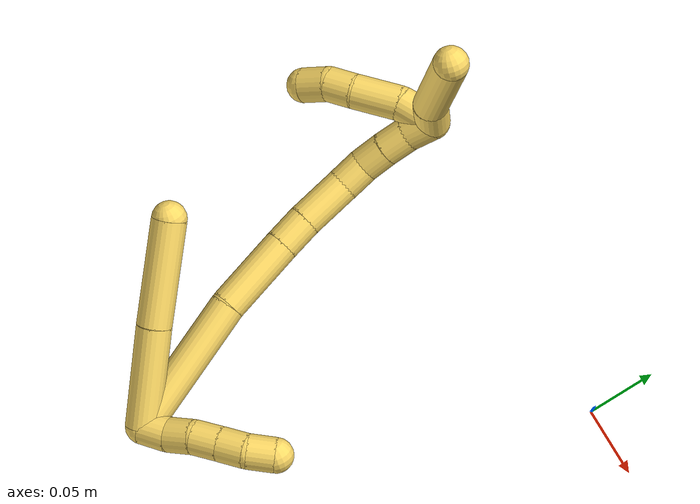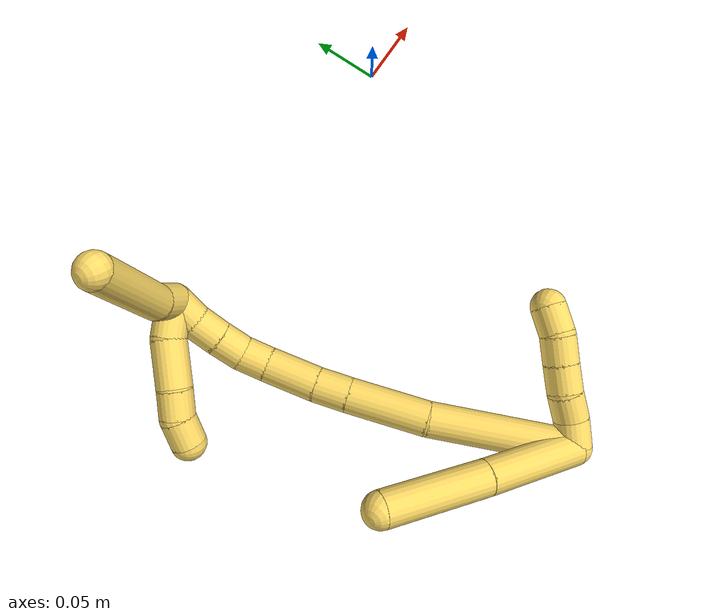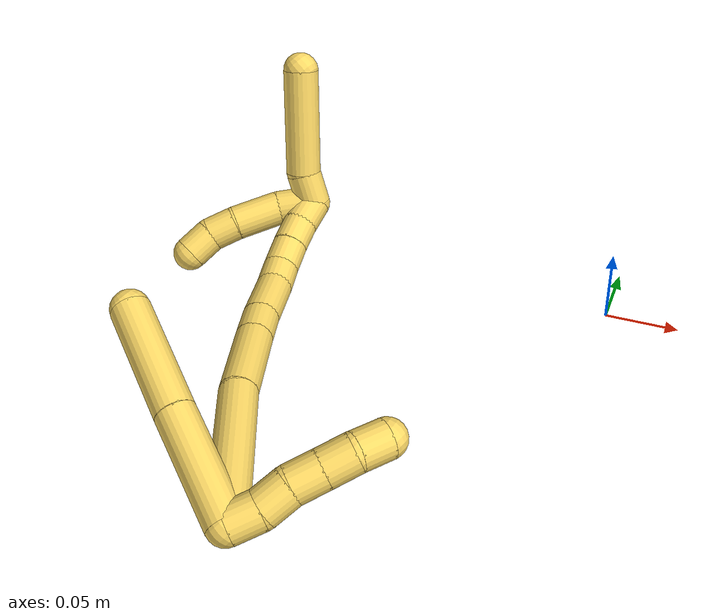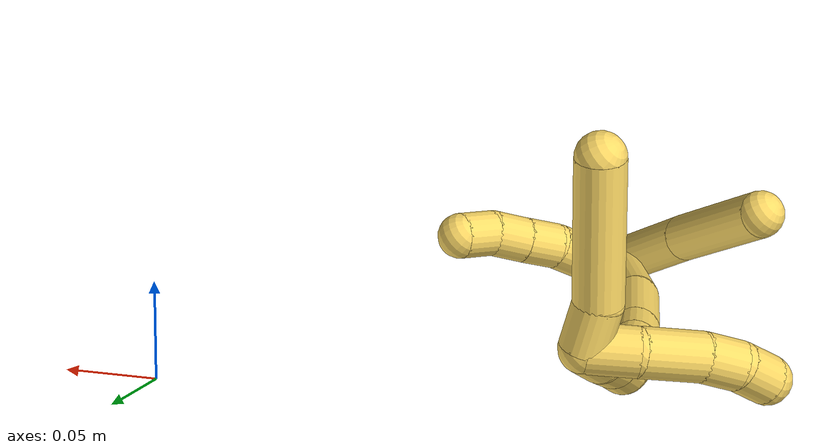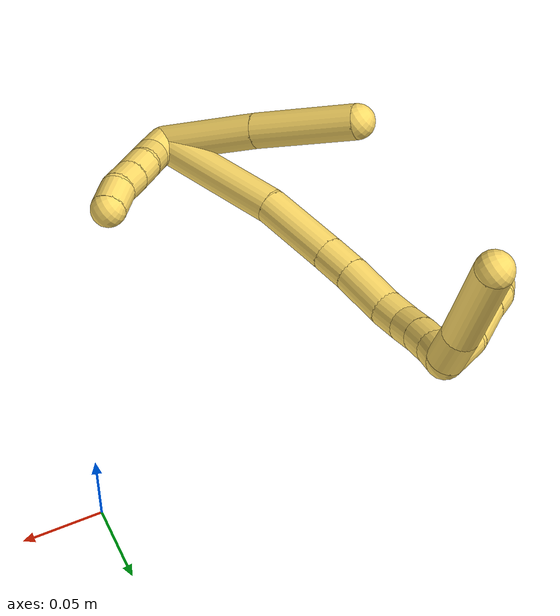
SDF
<sdf version="1.7">
 <world name="default">
  <model name="5">
   <static>0</static>
   <link name="5">
    <collision name="collision-cylinder-e_1_2_8">
     <pose>0.002028 0.017294 0.032396 -0.490342 0.055177 -0.013809</pose>
     <geometry><cylinder><radius>0.0125</radius><length>0.073557</length></cylinder></geometry>
     <surface>
      <friction><ode><mu>1.16</mu><mu2>1.16</mu2><slip1>0</slip1><slip2>0</slip2></ode></friction>
      <contact><ode><kp>1e+06</kp><kd>1</kd><max_vel>0</max_vel><min_depth>0.001</min_depth></ode></contact>
     </surface>
    </collision>
    <visual name="visual-cylinder-e_1_2_8">
     <pose>0.002028 0.017294 0.032396 -0.490342 0.055177 -0.013809</pose>
     <geometry><cylinder><radius>0.0125</radius><length>0.073557</length></cylinder></geometry>
     <material><ambient>1 0.858824 0.4 1</ambient></material>
    </visual>
    <collision name="collision-cylinder-e_2_8_6">
     <pose>0.006022 0.053956 0.097683 -0.532186 0.051447 -0.014025</pose>
     <geometry><cylinder><radius>0.0125</radius><length>0.076443</length></cylinder></geometry>
     <surface>
      <friction><ode><mu>1.16</mu><mu2>1.16</mu2><slip1>0</slip1><slip2>0</slip2></ode></friction>
      <contact><ode><kp>1e+06</kp><kd>1</kd><max_vel>0</max_vel><min_depth>0.001</min_depth></ode></contact>
     </surface>
    </collision>
    <visual name="visual-cylinder-e_2_8_6">
     <pose>0.006022 0.053956 0.097683 -0.532186 0.051447 -0.014025</pose>
     <geometry><cylinder><radius>0.0125</radius><length>0.076443</length></cylinder></geometry>
     <material><ambient>1 0.858824 0.4 1</ambient></material>
    </visual>
    <collision name="collision-cylinder-e_1_2_9">
     <pose>0.008879 0.00332 -0.003185 -2.33541 1.09276 -1.91849</pose>
     <geometry><cylinder><radius>0.0125</radius><length>0.02</length></cylinder></geometry>
     <surface>
      <friction><ode><mu>1.16</mu><mu2>1.16</mu2><slip1>0</slip1><slip2>0</slip2></ode></friction>
      <contact><ode><kp>1e+06</kp><kd>1</kd><max_vel>0</max_vel><min_depth>0.001</min_depth></ode></contact>
     </surface>
    </collision>
    <visual name="visual-cylinder-e_1_2_9">
     <pose>0.008879 0.00332 -0.003185 -2.33541 1.09276 -1.91849</pose>
     <geometry><cylinder><radius>0.0125</radius><length>0.02</length></cylinder></geometry>
     <material><ambient>1 0.858824 0.4 1</ambient></material>
    </visual>
    <collision name="collision-cylinder-e_2_9_10">
     <pose>0.027123 0.010103 -0.006919 -1.72813 1.21253 -1.36409</pose>
     <geometry><cylinder><radius>0.0125</radius><length>0.02</length></cylinder></geometry>
     <surface>
      <friction><ode><mu>1.16</mu><mu2>1.16</mu2><slip1>0</slip1><slip2>0</slip2></ode></friction>
      <contact><ode><kp>1e+06</kp><kd>1</kd><max_vel>0</max_vel><min_depth>0.001</min_depth></ode></contact>
     </surface>
    </collision>
    <visual name="visual-cylinder-e_2_9_10">
     <pose>0.027123 0.010103 -0.006919 -1.72813 1.21253 -1.36409</pose>
     <geometry><cylinder><radius>0.0125</radius><length>0.02</length></cylinder></geometry>
     <material><ambient>1 0.858824 0.4 1</ambient></material>
    </visual>
    <collision name="collision-cylinder-e_3_10_11">
     <pose>0.045415 0.01714 -0.010214 -2.22594 1.10323 -1.79116</pose>
     <geometry><cylinder><radius>0.0125</radius><length>0.02</length></cylinder></geometry>
     <surface>
      <friction><ode><mu>1.16</mu><mu2>1.16</mu2><slip1>0</slip1><slip2>0</slip2></ode></friction>
      <contact><ode><kp>1e+06</kp><kd>1</kd><max_vel>0</max_vel><min_depth>0.001</min_depth></ode></contact>
     </surface>
    </collision>
    <visual name="visual-cylinder-e_3_10_11">
     <pose>0.045415 0.01714 -0.010214 -2.22594 1.10323 -1.79116</pose>
     <geometry><cylinder><radius>0.0125</radius><length>0.02</length></cylinder></geometry>
     <material><ambient>1 0.858824 0.4 1</ambient></material>
    </visual>
    <collision name="collision-cylinder-e_4_11_12">
     <pose>0.063393 0.024053 -0.015592 -2.23839 1.13166 -1.83716</pose>
     <geometry><cylinder><radius>0.0125</radius><length>0.02</length></cylinder></geometry>
     <surface>
      <friction><ode><mu>1.16</mu><mu2>1.16</mu2><slip1>0</slip1><slip2>0</slip2></ode></friction>
      <contact><ode><kp>1e+06</kp><kd>1</kd><max_vel>0</max_vel><min_depth>0.001</min_depth></ode></contact>
     </surface>
    </collision>
    <visual name="visual-cylinder-e_4_11_12">
     <pose>0.063393 0.024053 -0.015592 -2.23839 1.13166 -1.83716</pose>
     <geometry><cylinder><radius>0.0125</radius><length>0.02</length></cylinder></geometry>
     <material><ambient>1 0.858824 0.4 1</ambient></material>
    </visual>
    <collision name="collision-cylinder-e_5_12_5">
     <pose>0.079958 0.033048 -0.021623 -2.11179 0.850164 -1.34956</pose>
     <geometry><cylinder><radius>0.0125</radius><length>0.02</length></cylinder></geometry>
     <surface>
      <friction><ode><mu>1.16</mu><mu2>1.16</mu2><slip1>0</slip1><slip2>0</slip2></ode></friction>
      <contact><ode><kp>1e+06</kp><kd>1</kd><max_vel>0</max_vel><min_depth>0.001</min_depth></ode></contact>
     </surface>
    </collision>
    <visual name="visual-cylinder-e_5_12_5">
     <pose>0.079958 0.033048 -0.021623 -2.11179 0.850164 -1.34956</pose>
     <geometry><cylinder><radius>0.0125</radius><length>0.02</length></cylinder></geometry>
     <material><ambient>1 0.858824 0.4 1</ambient></material>
    </visual>
    <collision name="collision-cylinder-e_1_2_13">
     <pose>0.009215 0.043843 0.024847 -1.05519 0.180852 -0.105571</pose>
     <geometry><cylinder><radius>0.0125</radius><length>0.10246</length></cylinder></geometry>
     <surface>
      <friction><ode><mu>1.16</mu><mu2>1.16</mu2><slip1>0</slip1><slip2>0</slip2></ode></friction>
      <contact><ode><kp>1e+06</kp><kd>1</kd><max_vel>0</max_vel><min_depth>0.001</min_depth></ode></contact>
     </surface>
    </collision>
    <visual name="visual-cylinder-e_1_2_13">
     <pose>0.009215 0.043843 0.024847 -1.05519 0.180852 -0.105571</pose>
     <geometry><cylinder><radius>0.0125</radius><length>0.10246</length></cylinder></geometry>
     <material><ambient>1 0.858824 0.4 1</ambient></material>
    </visual>
    <collision name="collision-cylinder-e_2_13_14">
     <pose>0.024045 0.1136 0.059779 -1.19969 0.199277 -0.136528</pose>
     <geometry><cylinder><radius>0.0125</radius><length>0.056738</length></cylinder></geometry>
     <surface>
      <friction><ode><mu>1.16</mu><mu2>1.16</mu2><slip1>0</slip1><slip2>0</slip2></ode></friction>
      <contact><ode><kp>1e+06</kp><kd>1</kd><max_vel>0</max_vel><min_depth>0.001</min_depth></ode></contact>
     </surface>
    </collision>
    <visual name="visual-cylinder-e_2_13_14">
     <pose>0.024045 0.1136 0.059779 -1.19969 0.199277 -0.136528</pose>
     <geometry><cylinder><radius>0.0125</radius><length>0.056738</length></cylinder></geometry>
     <material><ambient>1 0.858824 0.4 1</ambient></material>
    </visual>
    <collision name="collision-cylinder-e_3_14_15">
     <pose>0.032323 0.150297 0.073968 -1.20707 0.226766 -0.156672</pose>
     <geometry><cylinder><radius>0.0125</radius><length>0.02368</length></cylinder></geometry>
     <surface>
      <friction><ode><mu>1.16</mu><mu2>1.16</mu2><slip1>0</slip1><slip2>0</slip2></ode></friction>
      <contact><ode><kp>1e+06</kp><kd>1</kd><max_vel>0</max_vel><min_depth>0.001</min_depth></ode></contact>
     </surface>
    </collision>
    <visual name="visual-cylinder-e_3_14_15">
     <pose>0.032323 0.150297 0.073968 -1.20707 0.226766 -0.156672</pose>
     <geometry><cylinder><radius>0.0125</radius><length>0.02368</length></cylinder></geometry>
     <material><ambient>1 0.858824 0.4 1</ambient></material>
    </visual>
    <collision name="collision-cylinder-e_4_15_16">
     <pose>0.040118 0.177982 0.083666 -1.2512 0.280701 -0.203416</pose>
     <geometry><cylinder><radius>0.0125</radius><length>0.03706</length></cylinder></geometry>
     <surface>
      <friction><ode><mu>1.16</mu><mu2>1.16</mu2><slip1>0</slip1><slip2>0</slip2></ode></friction>
      <contact><ode><kp>1e+06</kp><kd>1</kd><max_vel>0</max_vel><min_depth>0.001</min_depth></ode></contact>
     </surface>
    </collision>
    <visual name="visual-cylinder-e_4_15_16">
     <pose>0.040118 0.177982 0.083666 -1.2512 0.280701 -0.203416</pose>
     <geometry><cylinder><radius>0.0125</radius><length>0.03706</length></cylinder></geometry>
     <material><ambient>1 0.858824 0.4 1</ambient></material>
    </visual>
    <collision name="collision-cylinder-e_5_16_17">
     <pose>0.04927 0.203129 0.093251 -1.1199 0.413443 -0.261434</pose>
     <geometry><cylinder><radius>0.0125</radius><length>0.020004</length></cylinder></geometry>
     <surface>
      <friction><ode><mu>1.16</mu><mu2>1.16</mu2><slip1>0</slip1><slip2>0</slip2></ode></friction>
      <contact><ode><kp>1e+06</kp><kd>1</kd><max_vel>0</max_vel><min_depth>0.001</min_depth></ode></contact>
     </surface>
    </collision>
    <visual name="visual-cylinder-e_5_16_17">
     <pose>0.04927 0.203129 0.093251 -1.1199 0.413443 -0.261434</pose>
     <geometry><cylinder><radius>0.0125</radius><length>0.020004</length></cylinder></geometry>
     <material><ambient>1 0.858824 0.4 1</ambient></material>
    </visual>
    <collision name="collision-cylinder-e_6_17_18">
     <pose>0.059582 0.217881 0.101519 -0.989425 0.679705 -0.376945</pose>
     <geometry><cylinder><radius>0.0125</radius><length>0.020024</length></cylinder></geometry>
     <surface>
      <friction><ode><mu>1.16</mu><mu2>1.16</mu2><slip1>0</slip1><slip2>0</slip2></ode></friction>
      <contact><ode><kp>1e+06</kp><kd>1</kd><max_vel>0</max_vel><min_depth>0.001</min_depth></ode></contact>
     </surface>
    </collision>
    <visual name="visual-cylinder-e_6_17_18">
     <pose>0.059582 0.217881 0.101519 -0.989425 0.679705 -0.376945</pose>
     <geometry><cylinder><radius>0.0125</radius><length>0.020024</length></cylinder></geometry>
     <material><ambient>1 0.858824 0.4 1</ambient></material>
    </visual>
    <collision name="collision-cylinder-e_7_18_19">
     <pose>0.072307 0.231091 0.109524 -1.06313 0.697795 -0.421466</pose>
     <geometry><cylinder><radius>0.0125</radius><length>0.020019</length></cylinder></geometry>
     <surface>
      <friction><ode><mu>1.16</mu><mu2>1.16</mu2><slip1>0</slip1><slip2>0</slip2></ode></friction>
      <contact><ode><kp>1e+06</kp><kd>1</kd><max_vel>0</max_vel><min_depth>0.001</min_depth></ode></contact>
     </surface>
    </collision>
    <visual name="visual-cylinder-e_7_18_19">
     <pose>0.072307 0.231091 0.109524 -1.06313 0.697795 -0.421466</pose>
     <geometry><cylinder><radius>0.0125</radius><length>0.020019</length></cylinder></geometry>
     <material><ambient>1 0.858824 0.4 1</ambient></material>
    </visual>
    <collision name="collision-cylinder-e_8_19_1">
     <pose>0.086467 0.243367 0.11631 -1.06914 0.882565 -0.545395</pose>
     <geometry><cylinder><radius>0.0125</radius><length>0.020015</length></cylinder></geometry>
     <surface>
      <friction><ode><mu>1.16</mu><mu2>1.16</mu2><slip1>0</slip1><slip2>0</slip2></ode></friction>
      <contact><ode><kp>1e+06</kp><kd>1</kd><max_vel>0</max_vel><min_depth>0.001</min_depth></ode></contact>
     </surface>
    </collision>
    <visual name="visual-cylinder-e_8_19_1">
     <pose>0.086467 0.243367 0.11631 -1.06914 0.882565 -0.545395</pose>
     <geometry><cylinder><radius>0.0125</radius><length>0.020015</length></cylinder></geometry>
     <material><ambient>1 0.858824 0.4 1</ambient></material>
    </visual>
    <collision name="collision-cylinder-e_1_1_20">
     <pose>0.099866 0.245784 0.129707 0.296297 0.482932 0.073475</pose>
     <geometry><cylinder><radius>0.0125</radius><length>0.024416</length></cylinder></geometry>
     <surface>
      <friction><ode><mu>1.16</mu><mu2>1.16</mu2><slip1>0</slip1><slip2>0</slip2></ode></friction>
      <contact><ode><kp>1e+06</kp><kd>1</kd><max_vel>0</max_vel><min_depth>0.001</min_depth></ode></contact>
     </surface>
    </collision>
    <visual name="visual-cylinder-e_1_1_20">
     <pose>0.099866 0.245784 0.129707 0.296297 0.482932 0.073475</pose>
     <geometry><cylinder><radius>0.0125</radius><length>0.024416</length></cylinder></geometry>
     <material><ambient>1 0.858824 0.4 1</ambient></material>
    </visual>
    <collision name="collision-cylinder-e_2_20_4">
     <pose>0.131383 0.235347 0.166639 0.26722 0.753157 0.106206</pose>
     <geometry><cylinder><radius>0.0125</radius><length>0.075584</length></cylinder></geometry>
     <surface>
      <friction><ode><mu>1.16</mu><mu2>1.16</mu2><slip1>0</slip1><slip2>0</slip2></ode></friction>
      <contact><ode><kp>1e+06</kp><kd>1</kd><max_vel>0</max_vel><min_depth>0.001</min_depth></ode></contact>
     </surface>
    </collision>
    <visual name="visual-cylinder-e_2_20_4">
     <pose>0.131383 0.235347 0.166639 0.26722 0.753157 0.106206</pose>
     <geometry><cylinder><radius>0.0125</radius><length>0.075584</length></cylinder></geometry>
     <material><ambient>1 0.858824 0.4 1</ambient></material>
    </visual>
    <collision name="collision-cylinder-e_1_1_21">
     <pose>0.083661 0.246278 0.126352 0.364157 -0.953643 -0.189652</pose>
     <geometry><cylinder><radius>0.0125</radius><length>0.025838</length></cylinder></geometry>
     <surface>
      <friction><ode><mu>1.16</mu><mu2>1.16</mu2><slip1>0</slip1><slip2>0</slip2></ode></friction>
      <contact><ode><kp>1e+06</kp><kd>1</kd><max_vel>0</max_vel><min_depth>0.001</min_depth></ode></contact>
     </surface>
    </collision>
    <visual name="visual-cylinder-e_1_1_21">
     <pose>0.083661 0.246278 0.126352 0.364157 -0.953643 -0.189652</pose>
     <geometry><cylinder><radius>0.0125</radius><length>0.025838</length></cylinder></geometry>
     <material><ambient>1 0.858824 0.4 1</ambient></material>
    </visual>
    <collision name="collision-cylinder-e_2_21_22">
     <pose>0.058641 0.236961 0.139322 0.838398 -1.01739 -0.48712</pose>
     <geometry><cylinder><radius>0.0125</radius><length>0.034051</length></cylinder></geometry>
     <surface>
      <friction><ode><mu>1.16</mu><mu2>1.16</mu2><slip1>0</slip1><slip2>0</slip2></ode></friction>
      <contact><ode><kp>1e+06</kp><kd>1</kd><max_vel>0</max_vel><min_depth>0.001</min_depth></ode></contact>
     </surface>
    </collision>
    <visual name="visual-cylinder-e_2_21_22">
     <pose>0.058641 0.236961 0.139322 0.838398 -1.01739 -0.48712</pose>
     <geometry><cylinder><radius>0.0125</radius><length>0.034051</length></cylinder></geometry>
     <material><ambient>1 0.858824 0.4 1</ambient></material>
    </visual>
    <collision name="collision-cylinder-e_3_22_23">
     <pose>0.034952 0.227528 0.148095 0.783482 -1.16662 -0.532271</pose>
     <geometry><cylinder><radius>0.0125</radius><length>0.020022</length></cylinder></geometry>
     <surface>
      <friction><ode><mu>1.16</mu><mu2>1.16</mu2><slip1>0</slip1><slip2>0</slip2></ode></friction>
      <contact><ode><kp>1e+06</kp><kd>1</kd><max_vel>0</max_vel><min_depth>0.001</min_depth></ode></contact>
     </surface>
    </collision>
    <visual name="visual-cylinder-e_3_22_23">
     <pose>0.034952 0.227528 0.148095 0.783482 -1.16662 -0.532271</pose>
     <geometry><cylinder><radius>0.0125</radius><length>0.020022</length></cylinder></geometry>
     <material><ambient>1 0.858824 0.4 1</ambient></material>
    </visual>
    <collision name="collision-cylinder-e_4_23_3">
     <pose>0.016373 0.221162 0.150526 1.67022 -1.20364 -1.29814</pose>
     <geometry><cylinder><radius>0.0125</radius><length>0.020089</length></cylinder></geometry>
     <surface>
      <friction><ode><mu>1.16</mu><mu2>1.16</mu2><slip1>0</slip1><slip2>0</slip2></ode></friction>
      <contact><ode><kp>1e+06</kp><kd>1</kd><max_vel>0</max_vel><min_depth>0.001</min_depth></ode></contact>
     </surface>
    </collision>
    <visual name="visual-cylinder-e_4_23_3">
     <pose>0.016373 0.221162 0.150526 1.67022 -1.20364 -1.29814</pose>
     <geometry><cylinder><radius>0.0125</radius><length>0.020089</length></cylinder></geometry>
     <material><ambient>1 0.858824 0.4 1</ambient></material>
    </visual>
    <collision name="collision-sphere-3">
     <pose>0.006998 0.217574 0.150168 0 -0 0</pose>
     <geometry><sphere><radius>0.0125</radius></sphere></geometry>
     <surface>
      <friction><ode><mu>1.16</mu><mu2>1.16</mu2><slip1>0</slip1><slip2>0</slip2></ode></friction>
      <contact><ode><kp>1e+06</kp><kd>1</kd><max_vel>0</max_vel><min_depth>0.001</min_depth></ode></contact>
     </surface>
    </collision>
    <visual name="visual-sphere-3">
     <pose>0.006998 0.217574 0.150168 0 -0 0</pose>
     <geometry><sphere><radius>0.0125</radius></sphere></geometry>
     <material><ambient>1 0.858824 0.4 1</ambient></material>
    </visual>
    <collision name="collision-sphere-23">
     <pose>0.025748 0.22475 0.150884 0 -0 0</pose>
     <geometry><sphere><radius>0.0125</radius></sphere></geometry>
     <surface>
      <friction><ode><mu>1.16</mu><mu2>1.16</mu2><slip1>0</slip1><slip2>0</slip2></ode></friction>
      <contact><ode><kp>1e+06</kp><kd>1</kd><max_vel>0</max_vel><min_depth>0.001</min_depth></ode></contact>
     </surface>
    </collision>
    <visual name="visual-sphere-23">
     <pose>0.025748 0.22475 0.150884 0 -0 0</pose>
     <geometry><sphere><radius>0.0125</radius></sphere></geometry>
     <material><ambient>1 0.858824 0.4 1</ambient></material>
    </visual>
    <collision name="collision-sphere-22">
     <pose>0.044156 0.230307 0.145306 0 -0 0</pose>
     <geometry><sphere><radius>0.0125</radius></sphere></geometry>
     <surface>
      <friction><ode><mu>1.16</mu><mu2>1.16</mu2><slip1>0</slip1><slip2>0</slip2></ode></friction>
      <contact><ode><kp>1e+06</kp><kd>1</kd><max_vel>0</max_vel><min_depth>0.001</min_depth></ode></contact>
     </surface>
    </collision>
    <visual name="visual-sphere-22">
     <pose>0.044156 0.230307 0.145306 0 -0 0</pose>
     <geometry><sphere><radius>0.0125</radius></sphere></geometry>
     <material><ambient>1 0.858824 0.4 1</ambient></material>
    </visual>
    <collision name="collision-sphere-21">
     <pose>0.073125 0.243615 0.133339 0 -0 0</pose>
     <geometry><sphere><radius>0.0125</radius></sphere></geometry>
     <surface>
      <friction><ode><mu>1.16</mu><mu2>1.16</mu2><slip1>0</slip1><slip2>0</slip2></ode></friction>
      <contact><ode><kp>1e+06</kp><kd>1</kd><max_vel>0</max_vel><min_depth>0.001</min_depth></ode></contact>
     </surface>
    </collision>
    <visual name="visual-sphere-21">
     <pose>0.073125 0.243615 0.133339 0 -0 0</pose>
     <geometry><sphere><radius>0.0125</radius></sphere></geometry>
     <material><ambient>1 0.858824 0.4 1</ambient></material>
    </visual>
    <collision name="collision-sphere-4">
     <pose>0.157231 0.228067 0.193232 0 -0 0</pose>
     <geometry><sphere><radius>0.0125</radius></sphere></geometry>
     <surface>
      <friction><ode><mu>1.16</mu><mu2>1.16</mu2><slip1>0</slip1><slip2>0</slip2></ode></friction>
      <contact><ode><kp>1e+06</kp><kd>1</kd><max_vel>0</max_vel><min_depth>0.001</min_depth></ode></contact>
     </surface>
    </collision>
    <visual name="visual-sphere-4">
     <pose>0.157231 0.228067 0.193232 0 -0 0</pose>
     <geometry><sphere><radius>0.0125</radius></sphere></geometry>
     <material><ambient>1 0.858824 0.4 1</ambient></material>
    </visual>
    <collision name="collision-sphere-20">
     <pose>0.105535 0.242627 0.140047 0 -0 0</pose>
     <geometry><sphere><radius>0.0125</radius></sphere></geometry>
     <surface>
      <friction><ode><mu>1.16</mu><mu2>1.16</mu2><slip1>0</slip1><slip2>0</slip2></ode></friction>
      <contact><ode><kp>1e+06</kp><kd>1</kd><max_vel>0</max_vel><min_depth>0.001</min_depth></ode></contact>
     </surface>
    </collision>
    <visual name="visual-sphere-20">
     <pose>0.105535 0.242627 0.140047 0 -0 0</pose>
     <geometry><sphere><radius>0.0125</radius></sphere></geometry>
     <material><ambient>1 0.858824 0.4 1</ambient></material>
    </visual>
    <collision name="collision-sphere-11">
     <pose>0.054341 0.020714 -0.01296 0 -0 0</pose>
     <geometry><sphere><radius>0.0125</radius></sphere></geometry>
     <surface>
      <friction><ode><mu>1.16</mu><mu2>1.16</mu2><slip1>0</slip1><slip2>0</slip2></ode></friction>
      <contact><ode><kp>1e+06</kp><kd>1</kd><max_vel>0</max_vel><min_depth>0.001</min_depth></ode></contact>
     </surface>
    </collision>
    <visual name="visual-sphere-11">
     <pose>0.054341 0.020714 -0.01296 0 -0 0</pose>
     <geometry><sphere><radius>0.0125</radius></sphere></geometry>
     <material><ambient>1 0.858824 0.4 1</ambient></material>
    </visual>
    <collision name="collision-sphere-10">
     <pose>0.036488 0.013566 -0.007468 0 -0 0</pose>
     <geometry><sphere><radius>0.0125</radius></sphere></geometry>
     <surface>
      <friction><ode><mu>1.16</mu><mu2>1.16</mu2><slip1>0</slip1><slip2>0</slip2></ode></friction>
      <contact><ode><kp>1e+06</kp><kd>1</kd><max_vel>0</max_vel><min_depth>0.001</min_depth></ode></contact>
     </surface>
    </collision>
    <visual name="visual-sphere-10">
     <pose>0.036488 0.013566 -0.007468 0 -0 0</pose>
     <geometry><sphere><radius>0.0125</radius></sphere></geometry>
     <material><ambient>1 0.858824 0.4 1</ambient></material>
    </visual>
    <collision name="collision-sphere-6">
     <pose>0.007988 0.073325 0.130575 0 -0 0</pose>
     <geometry><sphere><radius>0.0125</radius></sphere></geometry>
     <surface>
      <friction><ode><mu>1.16</mu><mu2>1.16</mu2><slip1>0</slip1><slip2>0</slip2></ode></friction>
      <contact><ode><kp>1e+06</kp><kd>1</kd><max_vel>0</max_vel><min_depth>0.001</min_depth></ode></contact>
     </surface>
    </collision>
    <visual name="visual-sphere-6">
     <pose>0.007988 0.073325 0.130575 0 -0 0</pose>
     <geometry><sphere><radius>0.0125</radius></sphere></geometry>
     <material><ambient>1 0.858824 0.4 1</ambient></material>
    </visual>
    <collision name="collision-sphere-9">
     <pose>0.017758 0.00664 -0.006369 0 -0 0</pose>
     <geometry><sphere><radius>0.0125</radius></sphere></geometry>
     <surface>
      <friction><ode><mu>1.16</mu><mu2>1.16</mu2><slip1>0</slip1><slip2>0</slip2></ode></friction>
      <contact><ode><kp>1e+06</kp><kd>1</kd><max_vel>0</max_vel><min_depth>0.001</min_depth></ode></contact>
     </surface>
    </collision>
    <visual name="visual-sphere-9">
     <pose>0.017758 0.00664 -0.006369 0 -0 0</pose>
     <geometry><sphere><radius>0.0125</radius></sphere></geometry>
     <material><ambient>1 0.858824 0.4 1</ambient></material>
    </visual>
    <collision name="collision-sphere-2">
     <geometry><sphere><radius>0.0125</radius></sphere></geometry>
     <surface>
      <friction><ode><mu>1.16</mu><mu2>1.16</mu2><slip1>0</slip1><slip2>0</slip2></ode></friction>
      <contact><ode><kp>1e+06</kp><kd>1</kd><max_vel>0</max_vel><min_depth>0.001</min_depth></ode></contact>
     </surface>
    </collision>
    <visual name="visual-sphere-2">
     <geometry><sphere><radius>0.0125</radius></sphere></geometry>
     <material><ambient>1 0.858824 0.4 1</ambient></material>
    </visual>
    <collision name="collision-sphere-19">
     <pose>0.078738 0.237794 0.113253 0 -0 0</pose>
     <geometry><sphere><radius>0.0125</radius></sphere></geometry>
     <surface>
      <friction><ode><mu>1.16</mu><mu2>1.16</mu2><slip1>0</slip1><slip2>0</slip2></ode></friction>
      <contact><ode><kp>1e+06</kp><kd>1</kd><max_vel>0</max_vel><min_depth>0.001</min_depth></ode></contact>
     </surface>
    </collision>
    <visual name="visual-sphere-19">
     <pose>0.078738 0.237794 0.113253 0 -0 0</pose>
     <geometry><sphere><radius>0.0125</radius></sphere></geometry>
     <material><ambient>1 0.858824 0.4 1</ambient></material>
    </visual>
    <collision name="collision-sphere-8">
     <pose>0.004057 0.034587 0.064791 0 -0 0</pose>
     <geometry><sphere><radius>0.0125</radius></sphere></geometry>
     <surface>
      <friction><ode><mu>1.16</mu><mu2>1.16</mu2><slip1>0</slip1><slip2>0</slip2></ode></friction>
      <contact><ode><kp>1e+06</kp><kd>1</kd><max_vel>0</max_vel><min_depth>0.001</min_depth></ode></contact>
     </surface>
    </collision>
    <visual name="visual-sphere-8">
     <pose>0.004057 0.034587 0.064791 0 -0 0</pose>
     <geometry><sphere><radius>0.0125</radius></sphere></geometry>
     <material><ambient>1 0.858824 0.4 1</ambient></material>
    </visual>
    <collision name="collision-sphere-12">
     <pose>0.072444 0.027392 -0.018225 0 -0 0</pose>
     <geometry><sphere><radius>0.0125</radius></sphere></geometry>
     <surface>
      <friction><ode><mu>1.16</mu><mu2>1.16</mu2><slip1>0</slip1><slip2>0</slip2></ode></friction>
      <contact><ode><kp>1e+06</kp><kd>1</kd><max_vel>0</max_vel><min_depth>0.001</min_depth></ode></contact>
     </surface>
    </collision>
    <visual name="visual-sphere-12">
     <pose>0.072444 0.027392 -0.018225 0 -0 0</pose>
     <geometry><sphere><radius>0.0125</radius></sphere></geometry>
     <material><ambient>1 0.858824 0.4 1</ambient></material>
    </visual>
    <collision name="collision-sphere-5">
     <pose>0.087472 0.038704 -0.025021 0 -0 0</pose>
     <geometry><sphere><radius>0.0125</radius></sphere></geometry>
     <surface>
      <friction><ode><mu>1.16</mu><mu2>1.16</mu2><slip1>0</slip1><slip2>0</slip2></ode></friction>
      <contact><ode><kp>1e+06</kp><kd>1</kd><max_vel>0</max_vel><min_depth>0.001</min_depth></ode></contact>
     </surface>
    </collision>
    <visual name="visual-sphere-5">
     <pose>0.087472 0.038704 -0.025021 0 -0 0</pose>
     <geometry><sphere><radius>0.0125</radius></sphere></geometry>
     <material><ambient>1 0.858824 0.4 1</ambient></material>
    </visual>
    <collision name="collision-sphere-13">
     <pose>0.018429 0.087685 0.049695 0 -0 0</pose>
     <geometry><sphere><radius>0.0125</radius></sphere></geometry>
     <surface>
      <friction><ode><mu>1.16</mu><mu2>1.16</mu2><slip1>0</slip1><slip2>0</slip2></ode></friction>
      <contact><ode><kp>1e+06</kp><kd>1</kd><max_vel>0</max_vel><min_depth>0.001</min_depth></ode></contact>
     </surface>
    </collision>
    <visual name="visual-sphere-13">
     <pose>0.018429 0.087685 0.049695 0 -0 0</pose>
     <geometry><sphere><radius>0.0125</radius></sphere></geometry>
     <material><ambient>1 0.858824 0.4 1</ambient></material>
    </visual>
    <collision name="collision-sphere-14">
     <pose>0.029661 0.139515 0.069863 0 -0 0</pose>
     <geometry><sphere><radius>0.0125</radius></sphere></geometry>
     <surface>
      <friction><ode><mu>1.16</mu><mu2>1.16</mu2><slip1>0</slip1><slip2>0</slip2></ode></friction>
      <contact><ode><kp>1e+06</kp><kd>1</kd><max_vel>0</max_vel><min_depth>0.001</min_depth></ode></contact>
     </surface>
    </collision>
    <visual name="visual-sphere-14">
     <pose>0.029661 0.139515 0.069863 0 -0 0</pose>
     <geometry><sphere><radius>0.0125</radius></sphere></geometry>
     <material><ambient>1 0.858824 0.4 1</ambient></material>
    </visual>
    <collision name="collision-sphere-15">
     <pose>0.034985 0.161079 0.078072 0 -0 0</pose>
     <geometry><sphere><radius>0.0125</radius></sphere></geometry>
     <surface>
      <friction><ode><mu>1.16</mu><mu2>1.16</mu2><slip1>0</slip1><slip2>0</slip2></ode></friction>
      <contact><ode><kp>1e+06</kp><kd>1</kd><max_vel>0</max_vel><min_depth>0.001</min_depth></ode></contact>
     </surface>
    </collision>
    <visual name="visual-sphere-15">
     <pose>0.034985 0.161079 0.078072 0 -0 0</pose>
     <geometry><sphere><radius>0.0125</radius></sphere></geometry>
     <material><ambient>1 0.858824 0.4 1</ambient></material>
    </visual>
    <collision name="collision-sphere-16">
     <pose>0.045252 0.194885 0.08926 0 -0 0</pose>
     <geometry><sphere><radius>0.0125</radius></sphere></geometry>
     <surface>
      <friction><ode><mu>1.16</mu><mu2>1.16</mu2><slip1>0</slip1><slip2>0</slip2></ode></friction>
      <contact><ode><kp>1e+06</kp><kd>1</kd><max_vel>0</max_vel><min_depth>0.001</min_depth></ode></contact>
     </surface>
    </collision>
    <visual name="visual-sphere-16">
     <pose>0.045252 0.194885 0.08926 0 -0 0</pose>
     <geometry><sphere><radius>0.0125</radius></sphere></geometry>
     <material><ambient>1 0.858824 0.4 1</ambient></material>
    </visual>
    <collision name="collision-sphere-17">
     <pose>0.053289 0.211373 0.097243 0 -0 0</pose>
     <geometry><sphere><radius>0.0125</radius></sphere></geometry>
     <surface>
      <friction><ode><mu>1.16</mu><mu2>1.16</mu2><slip1>0</slip1><slip2>0</slip2></ode></friction>
      <contact><ode><kp>1e+06</kp><kd>1</kd><max_vel>0</max_vel><min_depth>0.001</min_depth></ode></contact>
     </surface>
    </collision>
    <visual name="visual-sphere-17">
     <pose>0.053289 0.211373 0.097243 0 -0 0</pose>
     <geometry><sphere><radius>0.0125</radius></sphere></geometry>
     <material><ambient>1 0.858824 0.4 1</ambient></material>
    </visual>
    <collision name="collision-sphere-18">
     <pose>0.065875 0.224389 0.105795 0 -0 0</pose>
     <geometry><sphere><radius>0.0125</radius></sphere></geometry>
     <surface>
      <friction><ode><mu>1.16</mu><mu2>1.16</mu2><slip1>0</slip1><slip2>0</slip2></ode></friction>
      <contact><ode><kp>1e+06</kp><kd>1</kd><max_vel>0</max_vel><min_depth>0.001</min_depth></ode></contact>
     </surface>
    </collision>
    <visual name="visual-sphere-18">
     <pose>0.065875 0.224389 0.105795 0 -0 0</pose>
     <geometry><sphere><radius>0.0125</radius></sphere></geometry>
     <material><ambient>1 0.858824 0.4 1</ambient></material>
    </visual>
    <collision name="collision-sphere-1">
     <pose>0.094197 0.24894 0.119366 0 -0 0</pose>
     <geometry><sphere><radius>0.0125</radius></sphere></geometry>
     <surface>
      <friction><ode><mu>1.16</mu><mu2>1.16</mu2><slip1>0</slip1><slip2>0</slip2></ode></friction>
      <contact><ode><kp>1e+06</kp><kd>1</kd><max_vel>0</max_vel><min_depth>0.001</min_depth></ode></contact>
     </surface>
    </collision>
    <visual name="visual-sphere-1">
     <pose>0.094197 0.24894 0.119366 0 -0 0</pose>
     <geometry><sphere><radius>0.0125</radius></sphere></geometry>
     <material><ambient>1 0.858824 0.4 1</ambient></material>
    </visual>
    <inertial>
     <pose>0.043438 0.124515 0.076891 0 -0 0</pose>
     <mass>0.75</mass>
     <inertia>
      <ixx>0.000225</ixx>
      <ixy>0</ixy>
      <ixz>0</ixz>
      <iyy>0.000188</iyy>
      <iyz>0</iyz>
      <izz>-0.000165</izz>
     </inertia>
    </inertial>
   </link>
   <pose>-0.153687 -0.271655 0.012346 -0.60918 -0.70848 0.608842</pose>
  </model>
 </world>
</sdf>
